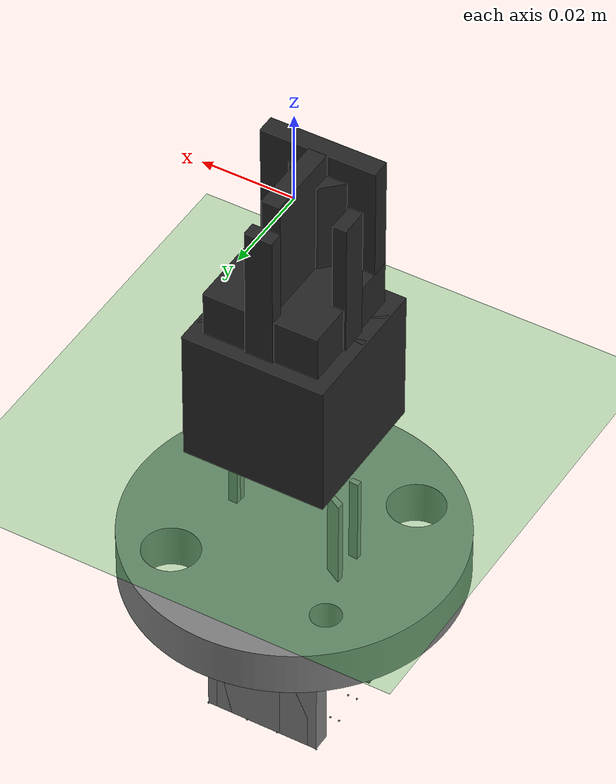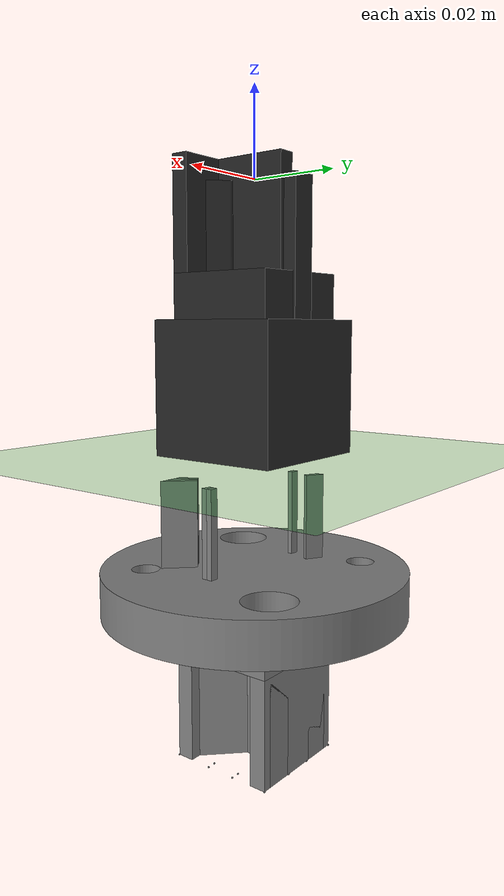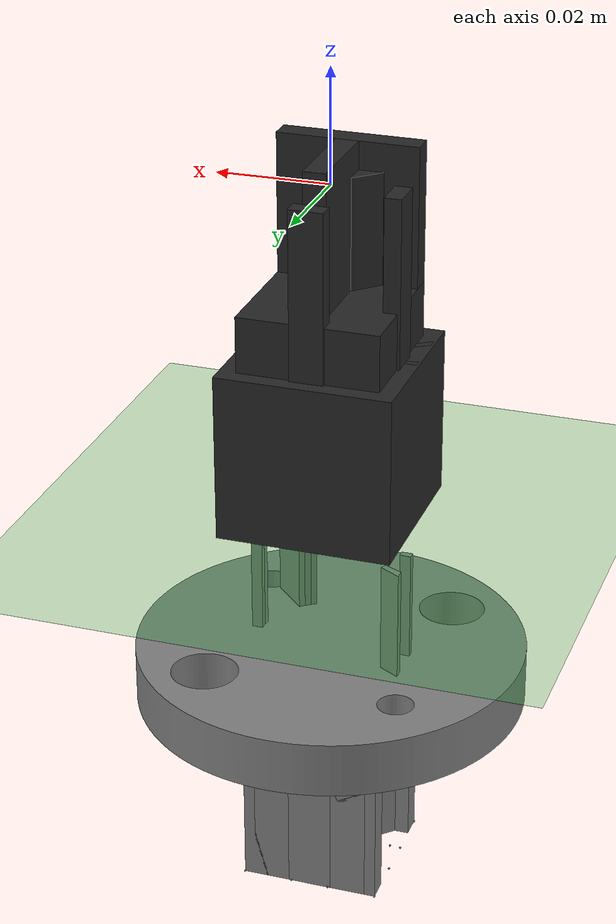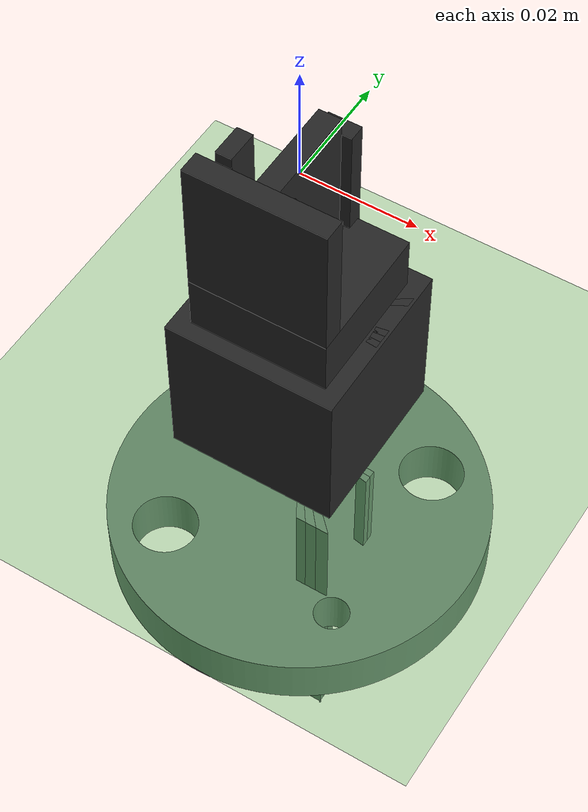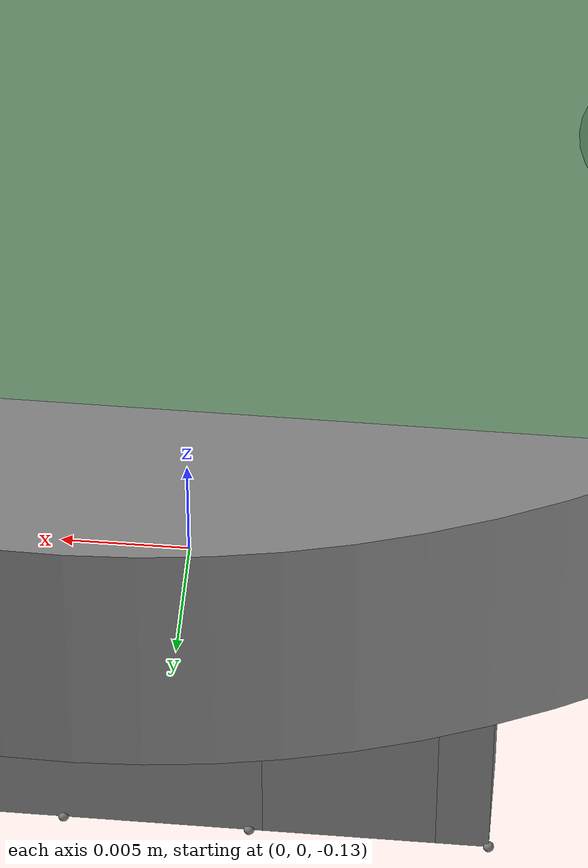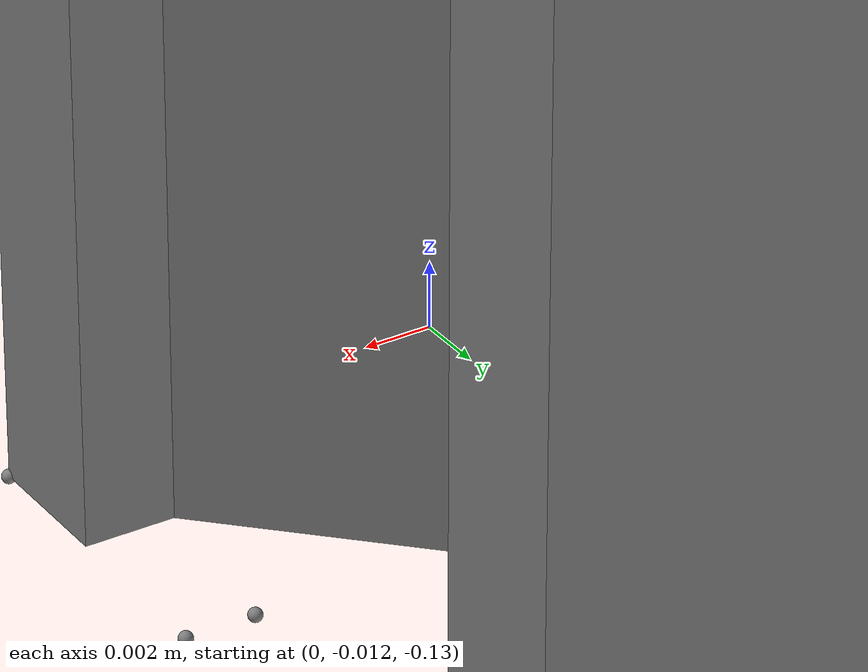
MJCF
<mujoco>
    <option timestep=".001">
        <flag energy="enable" contact="enable" override="enable" />
    </option>

    <default>
        <default class="hole_geom">
            <geom xyaxes="1 0 0 0 1 0" rgba="0.15 0.15 0.15 1" />
        </default>
        <site size="0.0002" />
        <geom friction="5" />
    </default>

    <visual>
        <global offwidth="960" offheight="720" />
    </visual>

    <asset>

        <mesh name="peg1" file="../asset/extrusion_peg/extrusion_peg_decomposition/Body1.stl" />
        <mesh name="peg2" file="../asset/extrusion_peg/extrusion_peg_decomposition/Body3.stl" />
        <mesh name="peg3" file="../asset/extrusion_peg/extrusion_peg_decomposition/Body4.stl" />
        <mesh name="peg4" file="../asset/extrusion_peg/extrusion_peg_decomposition/Body5.stl" />
        <mesh name="peg5" file="../asset/extrusion_peg/extrusion_peg_decomposition/Body6.stl" />
        <mesh name="peg6" file="../asset/extrusion_peg/extrusion_peg_decomposition/Body7.stl" />
        <mesh name="peg7" file="../asset/extrusion_peg/extrusion_peg_decomposition/Body8.stl" />
        <mesh name="peg8" file="../asset/extrusion_peg/extrusion_peg_decomposition/Body9.stl" />
        <mesh name="peg9" file="../asset/extrusion_peg/extrusion_peg_decomposition/Body10.stl" />
        <mesh name="peg10" file="../asset/extrusion_peg/extrusion_peg_decomposition/Body11.stl" />
        <mesh name="peg11" file="../asset/extrusion_peg/extrusion_peg_decomposition/Body12.stl" />
        <mesh name="peg12" file="../asset/extrusion_peg/extrusion_peg_decomposition/Body14.stl" />
        <mesh name="peg13" file="../asset/extrusion_peg/extrusion_peg_decomposition/Body17.stl" />
        <mesh name="peg14" file="../asset/extrusion_peg/extrusion_peg_decomposition/Body19.stl" />
        <mesh name="peg15" file="../asset/extrusion_peg/extrusion_peg_decomposition/Body21.stl" />
        <mesh name="peg16" file="../asset/extrusion_peg/extrusion_peg_decomposition/Body23.stl" />
        <mesh name="peg17" file="../asset/extrusion_peg/extrusion_peg_decomposition/Body25.stl" />

        <mesh name="hole1" file="../asset/extrusion_peg/extrusion_hole_decomposition/Body1.stl" />
        <mesh name="hole2" file="../asset/extrusion_peg/extrusion_hole_decomposition/Body2.stl" />
        <mesh name="hole3" file="../asset/extrusion_peg/extrusion_hole_decomposition/Body3.stl" />
        <mesh name="hole4" file="../asset/extrusion_peg/extrusion_hole_decomposition/Body4.stl" />
        <mesh name="hole5" file="../asset/extrusion_peg/extrusion_hole_decomposition/Body5.stl" />
        <mesh name="hole6" file="../asset/extrusion_peg/extrusion_hole_decomposition/Body6.stl" />
        <mesh name="hole7" file="../asset/extrusion_peg/extrusion_hole_decomposition/Body7.stl" />
        <mesh name="hole8" file="../asset/extrusion_peg/extrusion_hole_decomposition/Body9.stl" />
        <mesh name="hole9" file="../asset/extrusion_peg/extrusion_hole_decomposition/Body11.stl" />
        <mesh name="hole10" file="../asset/extrusion_peg/extrusion_hole_decomposition/Body13.stl" />
        <mesh name="hole11" file="../asset/extrusion_peg/extrusion_hole_decomposition/Body15.stl" />
        <mesh name="hole12" file="../asset/extrusion_peg/extrusion_hole_decomposition/Body16.stl" />
        <mesh name="hole13" file="../asset/extrusion_peg/extrusion_hole_decomposition/Body17.stl" />

        <texture name="grid" type="2d" file="../asset/green_tex.png" />
        <material name="grid" texture="grid" texrepeat="6 6" texuniform="true" reflectance="0.0" />
    </asset>

    <worldbody>
        <site name="world" pos="0 0 0" size="0.0001" />
        <light name="top-light" pos="0.1 -.2 0.8" mode="targetbodycom" target="peg"
            castshadow="false" ambient=".4 .4 .4" />

        <geom name="ground" type="plane" pos="0 0 -0.06" size="1 1 0.01" material="grid"
            friction=".1" />

        <body name="hole" pos="0 0 -0.03">
            <inertial pos="0 0 0" mass="0.1" diaginertia="0.1 0.1 0.1" />

            <geom type="mesh" mesh="hole1" class="hole_geom" />
            <geom type="mesh" mesh="hole2" class="hole_geom" />
            <geom type="mesh" mesh="hole3" class="hole_geom" />
            <geom type="mesh" mesh="hole4" class="hole_geom" />
            <geom type="mesh" mesh="hole5" class="hole_geom" />
            <geom type="mesh" mesh="hole6" class="hole_geom" />
            <geom type="mesh" mesh="hole7" class="hole_geom" />
            <geom type="mesh" mesh="hole8" class="hole_geom" />
            <geom type="mesh" mesh="hole9" class="hole_geom" />
            <geom type="mesh" mesh="hole10" class="hole_geom" />
            <geom type="mesh" mesh="hole11" class="hole_geom" />
            <geom type="mesh" mesh="hole12" class="hole_geom" />
            <geom type="mesh" mesh="hole13" class="hole_geom" />

        </body>

        <body name="flage" pos="0 0 0">

            <site name="peg/external/motor" pos="0 0 0" />

            <camera name="track" mode="track" pos="-0.03 0.0575 -0.098" euler="-60 -30 180" fovy="69.4"/>

            <joint name="trans_x" type="slide" axis="1 0 0" limited="false" />
            <joint name="trans_y" type="slide" axis="0 1 0" limited="false" />
            <joint name="trans_z" type="slide" axis="0 0 1" limited="false" />
            <joint name="hinge_x" type="hinge" axis="1 0 0" limited="false" />
            <joint name="hinge_y" type="hinge" axis="0 1 0" limited="false" />
            <joint name="hinge_z" type="hinge" axis="0 0 1" limited="false" />

            <body name="peg" pos="0 0 -0.0958">

                <inertial pos="-0.00665 0.00795 0.08289" mass="1.41" diaginertia="0.1 0.1 0.1" />

                <site name="peg/origin" pos="0 0 0" />
                <site name="peg/peg" pos="0 0 -0.01" />
                <site name="peg/tip" pos="0 0 -0.035" />

                <site name="peg/peg_bottom_1" pos="0.0105 0.0035 -0.035" />
                <site name="peg/peg_bottom_2" pos="0.0125 0.0035 -0.035" />
                <site name="peg/peg_bottom_3" pos="0.0125 0.0125 -0.035" />
                <site name="peg/peg_bottom_4" pos="0.0035 0.0125 -0.035" />
                <site name="peg/peg_bottom_5" pos="0.0035 0.0105 -0.035" />

                <site name="peg/peg_bottom_6" pos="-0.0035 0.0105 -0.035" />
                <site name="peg/peg_bottom_7" pos="-0.0035 0.0125 -0.035" />
                <site name="peg/peg_bottom_8" pos="-0.0125 0.0125 -0.035" />
                <site name="peg/peg_bottom_9" pos="-0.0125 0.0035 -0.035" />
                <site name="peg/peg_bottom_10" pos="-0.0105 0.0035 -0.035" />

                <site name="peg/peg_bottom_11" pos="-0.0105 -0.0035 -0.035" />
                <site name="peg/peg_bottom_12" pos="-0.0125 -0.0035 -0.035" />
                <site name="peg/peg_bottom_13" pos="-0.0125 -0.0125 -0.035" />
                <site name="peg/peg_bottom_14" pos="-0.0035 -0.0125 -0.035" />
                <site name="peg/peg_bottom_15" pos="-0.0035 -0.0105 -0.035" />

                <site name="peg/peg_bottom_16" pos="0.0035 -0.0105 -0.035" />
                <site name="peg/peg_bottom_17" pos="0.0035 -0.0125 -0.035" />
                <site name="peg/peg_bottom_18" pos="0.0125 -0.0125 -0.035" />
                <site name="peg/peg_bottom_19" pos="0.0125 -0.0035 -0.035" />
                <site name="peg/peg_bottom_20" pos="0.0105 -0.0035 -0.035" />

                <geom type="mesh" mesh="peg1" xyaxes="1 0 0 0 -1 0" />
                <geom type="mesh" mesh="peg2" xyaxes="1 0 0 0 -1 0" />
                <geom type="mesh" mesh="peg3" xyaxes="1 0 0 0 -1 0" />
                <geom type="mesh" mesh="peg4" xyaxes="1 0 0 0 -1 0" />
                <geom type="mesh" mesh="peg5" xyaxes="1 0 0 0 -1 0" />
                <geom type="mesh" mesh="peg6" xyaxes="1 0 0 0 -1 0" />
                <geom type="mesh" mesh="peg7" xyaxes="1 0 0 0 -1 0" />
                <geom type="mesh" mesh="peg8" xyaxes="1 0 0 0 -1 0" />
                <geom type="mesh" mesh="peg9" xyaxes="1 0 0 0 -1 0" />
                <geom type="mesh" mesh="peg10" xyaxes="1 0 0 0 -1 0" />
                <geom type="mesh" mesh="peg11" xyaxes="1 0 0 0 -1 0" />
                <geom type="mesh" mesh="peg12" xyaxes="1 0 0 0 -1 0" />
                <geom type="mesh" mesh="peg13" xyaxes="1 0 0 0 -1 0" />
                <geom type="mesh" mesh="peg14" xyaxes="1 0 0 0 -1 0" />
                <geom type="mesh" mesh="peg15" xyaxes="1 0 0 0 -1 0" />
                <geom type="mesh" mesh="peg16" xyaxes="1 0 0 0 -1 0" />
                <geom type="mesh" mesh="peg17" xyaxes="1 0 0 0 -1 0" />
            </body>
        </body>

    </worldbody>

    <custom>
        <numeric name="sites_on_peg_bottom" data="20"/>
    </custom>

    <actuator>
        <position name="x" forcelimited="true" forcerange="-20 20" joint="trans_x" kp="3000" kv="50" />
        <position name="y" forcelimited="true" forcerange="-20 20" joint="trans_y" kp="3000" kv="50" />
        <position name="z" forcelimited="true" forcerange="-20 20" joint="trans_z" kp="3000" kv="50" />
        <position name="rx" forcelimited="true" forcerange="-5 5" joint="hinge_x" kp="50" kv="5" />
        <position name="ry" forcelimited="true" forcerange="-5 5" joint="hinge_y" kp="50" kv="5"/>
        <position name="rz" forcelimited="true" forcerange="-5 5" joint="hinge_z" kp="50" kv="5"/>
    </actuator>

    <sensor>
        <force name="force_sensor" site="peg/external/motor" />
        <torque name="torque_sensor" site="peg/external/motor" />
        <framepos name="peg_pos" objtype="site" objname="peg/peg" />
        <framequat name="peg_quat" objtype="site" objname="peg/peg" />
    </sensor>
</mujoco>
